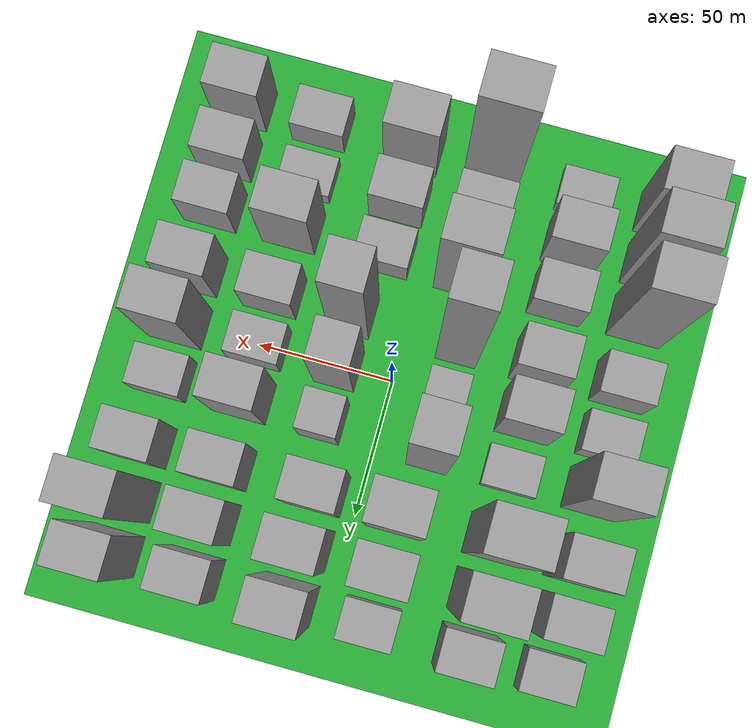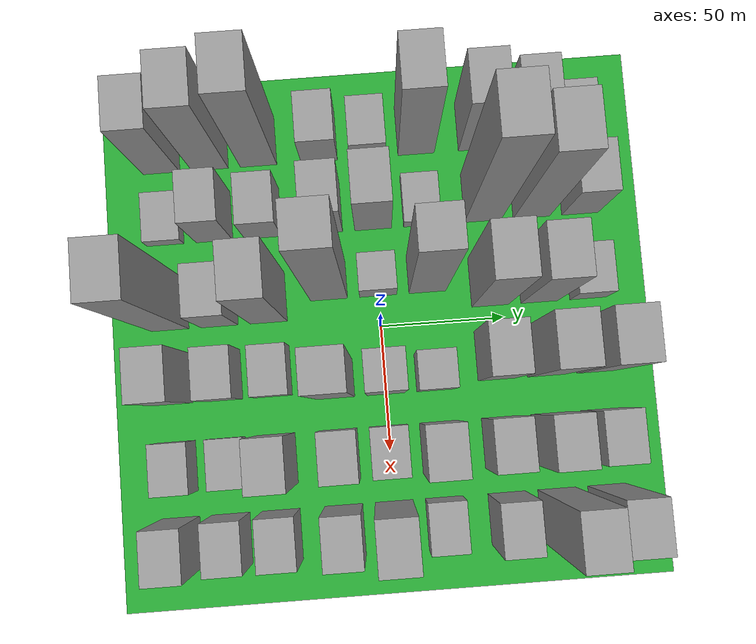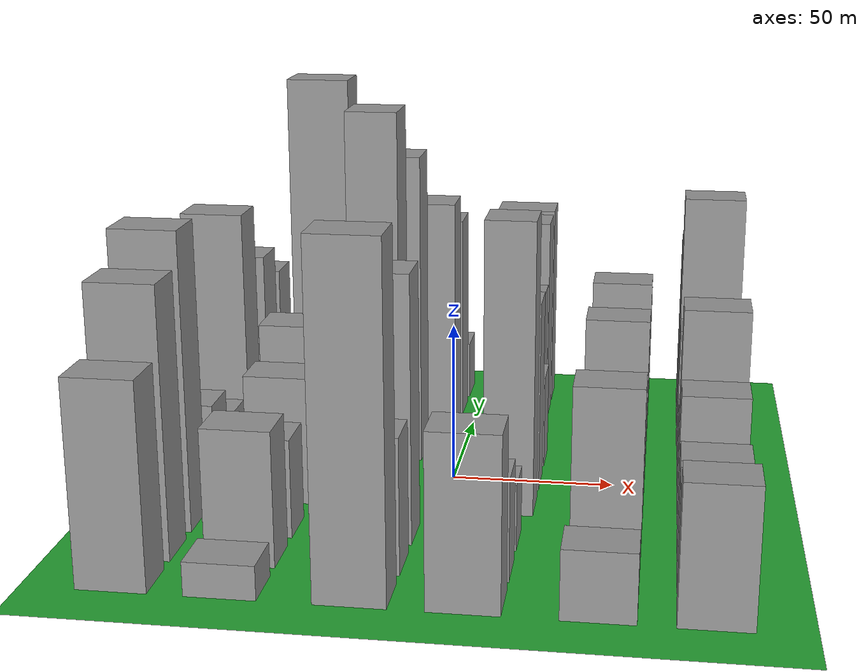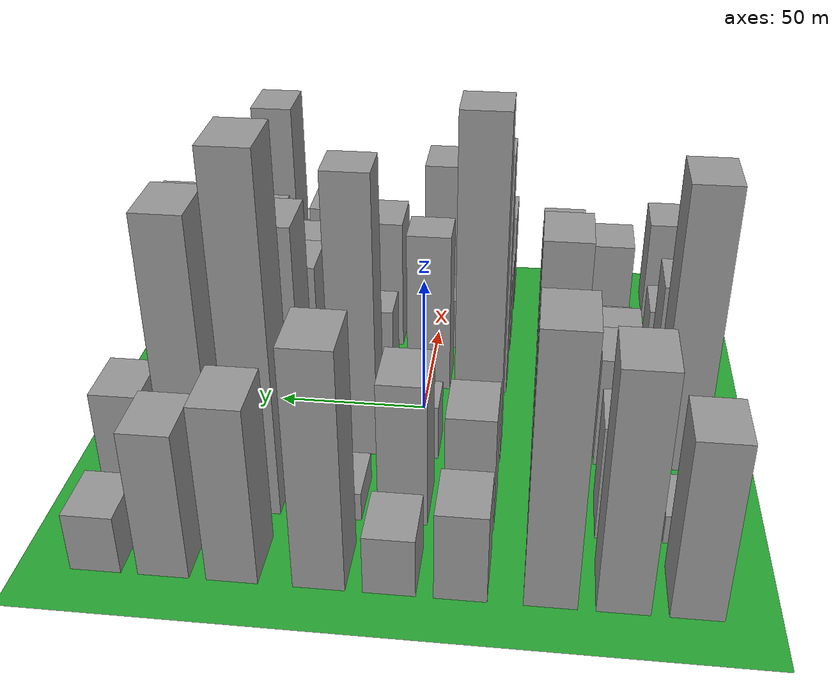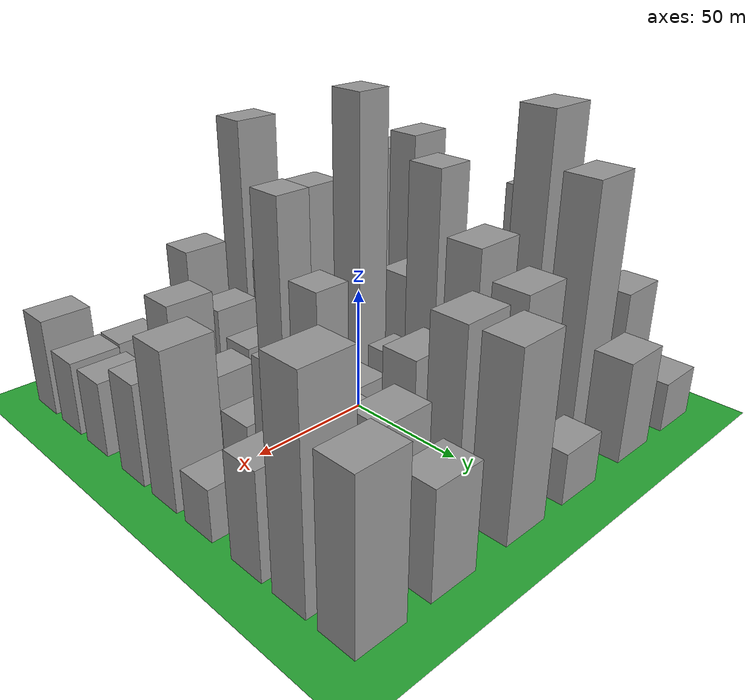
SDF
<sdf version="1.5">
 <world name="default">
  <light name="sun" type="directional">
   <pose>0 0 10 0 -0 0</pose>
   <diffuse>0.8 0.8 0.8 1</diffuse>
   <specular>0.1 0.1 0.1 1</specular>
   <attenuation>
    <range>1000</range>
    <constant>0.9</constant>
    <linear>0.01</linear>
    <quadratic>0.001</quadratic>
   </attenuation>
   <direction>-0.5 0.5 -1</direction>
  </light>
  <model name="ground_plane">
   <static>1</static>
   <link name="link">
    <collision name="collision">
     <geometry><plane><normal>0 0 1</normal><size>200 200</size></plane></geometry>
     <surface><friction><ode><mu>100</mu><mu2>50</mu2></ode></friction></surface>
    </collision>
    <visual name="visual">
     <cast_shadows>0</cast_shadows>
     <geometry><plane><normal>0 0 1</normal><size>200 200</size></plane></geometry>
     <material>
      <script><uri>file://media/materials/scripts/gazebo.material</uri><name>Gazebo/Green</name></script>
     </material>
    </visual>
   </link>
  </model>
  <gravity>0 0 -9.8</gravity>
  <magnetic_field>6e-06 2.3e-05 -4.2e-05</magnetic_field>
  <atmosphere type="adiabatic"/>
  <physics name="default_physics" default="0" type="ode">
   <max_step_size>0.001</max_step_size>
   <real_time_factor>1</real_time_factor>
   <real_time_update_rate>1000</real_time_update_rate>
  </physics>
  <scene><ambient>0.4 0.4 0.4 1</ambient><background>0.7 0.7 0.7 1</background><shadows>1</shadows></scene>
  <spherical_coordinates>
   <surface_model>EARTH_WGS84</surface_model>
   <latitude_deg>0</latitude_deg>
   <longitude_deg>0</longitude_deg>
   <elevation>0</elevation>
   <heading_deg>0</heading_deg>
  </spherical_coordinates>
  <model name="unit_box_0_0">
   <pose>-80 85 10 0 0 0</pose>
   <link name="link">
    <inertial>
     <mass>1</mass>
     <inertia>
      <ixx>0.166667</ixx>
      <ixy>0</ixy>
      <ixz>0</ixz>
      <iyy>0.166667</iyy>
      <iyz>0</iyz>
      <izz>0.166667</izz>
     </inertia>
    </inertial>
    <collision name="collision"><geometry><box><size>20 15 20</size></box></geometry></collision>
    <visual name="visual">
     <geometry><box><size>20 15 20</size></box></geometry>
     <material>
      <script><name>Gazebo/Grey</name><uri>file://media/materials/scripts/gazebo.material</uri></script>
     </material>
    </visual>
   </link>
   <static>true</static>
  </model>
  <model name="unit_box_0_1">
   <pose>-80 65 25 0 0 0</pose>
   <link name="link">
    <inertial>
     <mass>1</mass>
     <inertia>
      <ixx>0.166667</ixx>
      <ixy>0</ixy>
      <ixz>0</ixz>
      <iyy>0.166667</iyy>
      <iyz>0</iyz>
      <izz>0.166667</izz>
     </inertia>
    </inertial>
    <collision name="collision"><geometry><box><size>20 15 50</size></box></geometry></collision>
    <visual name="visual">
     <geometry><box><size>20 15 50</size></box></geometry>
     <material>
      <script><name>Gazebo/Grey</name><uri>file://media/materials/scripts/gazebo.material</uri></script>
     </material>
    </visual>
   </link>
   <static>true</static>
  </model>
  <model name="unit_box_0_2">
   <pose>-80 45 30 0 0 0</pose>
   <link name="link">
    <inertial>
     <mass>1</mass>
     <inertia>
      <ixx>0.166667</ixx>
      <ixy>0</ixy>
      <ixz>0</ixz>
      <iyy>0.166667</iyy>
      <iyz>0</iyz>
      <izz>0.166667</izz>
     </inertia>
    </inertial>
    <collision name="collision"><geometry><box><size>20 15 60</size></box></geometry></collision>
    <visual name="visual">
     <geometry><box><size>20 15 60</size></box></geometry>
     <material>
      <script><name>Gazebo/Grey</name><uri>file://media/materials/scripts/gazebo.material</uri></script>
     </material>
    </visual>
   </link>
   <static>true</static>
  </model>
  <model name="unit_box_0_3">
   <pose>-50 85 20 0 0 0</pose>
   <link name="link">
    <inertial>
     <mass>1</mass>
     <inertia>
      <ixx>0.166667</ixx>
      <ixy>0</ixy>
      <ixz>0</ixz>
      <iyy>0.166667</iyy>
      <iyz>0</iyz>
      <izz>0.166667</izz>
     </inertia>
    </inertial>
    <collision name="collision"><geometry><box><size>20 15 40</size></box></geometry></collision>
    <visual name="visual">
     <geometry><box><size>20 15 40</size></box></geometry>
     <material>
      <script><name>Gazebo/Grey</name><uri>file://media/materials/scripts/gazebo.material</uri></script>
     </material>
    </visual>
   </link>
   <static>true</static>
  </model>
  <model name="unit_box_0_4">
   <pose>-50 65 50 0 0 0</pose>
   <link name="link">
    <inertial>
     <mass>1</mass>
     <inertia>
      <ixx>0.166667</ixx>
      <ixy>0</ixy>
      <ixz>0</ixz>
      <iyy>0.166667</iyy>
      <iyz>0</iyz>
      <izz>0.166667</izz>
     </inertia>
    </inertial>
    <collision name="collision"><geometry><box><size>20 15 100</size></box></geometry></collision>
    <visual name="visual">
     <geometry><box><size>20 15 100</size></box></geometry>
     <material>
      <script><name>Gazebo/Grey</name><uri>file://media/materials/scripts/gazebo.material</uri></script>
     </material>
    </visual>
   </link>
   <static>true</static>
  </model>
  <model name="unit_box_0_5">
   <pose>-50 45 60 0 0 0</pose>
   <link name="link">
    <inertial>
     <mass>1</mass>
     <inertia>
      <ixx>0.166667</ixx>
      <ixy>0</ixy>
      <ixz>0</ixz>
      <iyy>0.166667</iyy>
      <iyz>0</iyz>
      <izz>0.166667</izz>
     </inertia>
    </inertial>
    <collision name="collision"><geometry><box><size>20 15 120</size></box></geometry></collision>
    <visual name="visual">
     <geometry><box><size>20 15 120</size></box></geometry>
     <material>
      <script><name>Gazebo/Grey</name><uri>file://media/materials/scripts/gazebo.material</uri></script>
     </material>
    </visual>
   </link>
   <static>true</static>
  </model>
  <model name="unit_box_0_6">
   <pose>-80 20 40 0 0 0</pose>
   <link name="link">
    <inertial>
     <mass>1</mass>
     <inertia>
      <ixx>0.166667</ixx>
      <ixy>0</ixy>
      <ixz>0</ixz>
      <iyy>0.166667</iyy>
      <iyz>0</iyz>
      <izz>0.166667</izz>
     </inertia>
    </inertial>
    <collision name="collision"><geometry><box><size>20 15 80</size></box></geometry></collision>
    <visual name="visual">
     <geometry><box><size>20 15 80</size></box></geometry>
     <material>
      <script><name>Gazebo/Grey</name><uri>file://media/materials/scripts/gazebo.material</uri></script>
     </material>
    </visual>
   </link>
   <static>true</static>
  </model>
  <model name="unit_box_0_7">
   <pose>-80 0 10 0 0 0</pose>
   <link name="link">
    <inertial>
     <mass>1</mass>
     <inertia>
      <ixx>0.166667</ixx>
      <ixy>0</ixy>
      <ixz>0</ixz>
      <iyy>0.166667</iyy>
      <iyz>0</iyz>
      <izz>0.166667</izz>
     </inertia>
    </inertial>
    <collision name="collision"><geometry><box><size>20 15 20</size></box></geometry></collision>
    <visual name="visual">
     <geometry><box><size>20 15 20</size></box></geometry>
     <material>
      <script><name>Gazebo/Grey</name><uri>file://media/materials/scripts/gazebo.material</uri></script>
     </material>
    </visual>
   </link>
  </model>
  <model name="unit_box_0_8">
   <pose>-80 -20 15 0 0 0</pose>
   <link name="link">
    <inertial>
     <mass>1</mass>
     <inertia>
      <ixx>0.166667</ixx>
      <ixy>0</ixy>
      <ixz>0</ixz>
      <iyy>0.166667</iyy>
      <iyz>0</iyz>
      <izz>0.166667</izz>
     </inertia>
    </inertial>
    <collision name="collision"><geometry><box><size>20 15 30</size></box></geometry></collision>
    <visual name="visual">
     <geometry><box><size>20 15 30</size></box></geometry>
     <material>
      <script><name>Gazebo/Grey</name><uri>file://media/materials/scripts/gazebo.material</uri></script>
     </material>
    </visual>
   </link>
   <static>true</static>
  </model>
  <model name="unit_box_0_9">
   <pose>-50 20 5 0 0 0</pose>
   <link name="link">
    <inertial>
     <mass>1</mass>
     <inertia>
      <ixx>0.166667</ixx>
      <ixy>0</ixy>
      <ixz>0</ixz>
      <iyy>0.166667</iyy>
      <iyz>0</iyz>
      <izz>0.166667</izz>
     </inertia>
    </inertial>
    <collision name="collision"><geometry><box><size>20 15 10</size></box></geometry></collision>
    <visual name="visual">
     <geometry><box><size>20 15 10</size></box></geometry>
     <material>
      <script><name>Gazebo/Grey</name><uri>file://media/materials/scripts/gazebo.material</uri></script>
     </material>
    </visual>
   </link>
   <static>true</static>
  </model>
  <model name="unit_box_0_10">
   <pose>-50 0 25 0 0 0</pose>
   <link name="link">
    <inertial>
     <mass>1</mass>
     <inertia>
      <ixx>0.166667</ixx>
      <ixy>0</ixy>
      <ixz>0</ixz>
      <iyy>0.166667</iyy>
      <iyz>0</iyz>
      <izz>0.166667</izz>
     </inertia>
    </inertial>
    <collision name="collision"><geometry><box><size>20 15 50</size></box></geometry></collision>
    <visual name="visual">
     <geometry><box><size>20 15 50</size></box></geometry>
     <material>
      <script><name>Gazebo/Grey</name><uri>file://media/materials/scripts/gazebo.material</uri></script>
     </material>
    </visual>
   </link>
   <static>true</static>
  </model>
  <model name="unit_box_0_11">
   <pose>-50 -20 20 0 0 0</pose>
   <link name="link">
    <inertial>
     <mass>1</mass>
     <inertia>
      <ixx>0.166667</ixx>
      <ixy>0</ixy>
      <ixz>0</ixz>
      <iyy>0.166667</iyy>
      <iyz>0</iyz>
      <izz>0.166667</izz>
     </inertia>
    </inertial>
    <collision name="collision"><geometry><box><size>20 15 40</size></box></geometry></collision>
    <visual name="visual">
     <geometry><box><size>20 15 40</size></box></geometry>
     <material>
      <script><name>Gazebo/Grey</name><uri>file://media/materials/scripts/gazebo.material</uri></script>
     </material>
    </visual>
   </link>
   <static>true</static>
  </model>
  <model name="unit_box_0_12">
   <pose>-80 -45 45 0 0 0</pose>
   <link name="link">
    <inertial>
     <mass>1</mass>
     <inertia>
      <ixx>0.166667</ixx>
      <ixy>0</ixy>
      <ixz>0</ixz>
      <iyy>0.166667</iyy>
      <iyz>0</iyz>
      <izz>0.166667</izz>
     </inertia>
    </inertial>
    <collision name="collision"><geometry><box><size>20 15 90</size></box></geometry></collision>
    <visual name="visual">
     <geometry><box><size>20 15 90</size></box></geometry>
     <material>
      <script><name>Gazebo/Grey</name><uri>file://media/materials/scripts/gazebo.material</uri></script>
     </material>
    </visual>
   </link>
   <static>true</static>
  </model>
  <model name="unit_box_0_13">
   <pose>-80 -65 40 0 0 0</pose>
   <link name="link">
    <inertial>
     <mass>1</mass>
     <inertia>
      <ixx>0.166667</ixx>
      <ixy>0</ixy>
      <ixz>0</ixz>
      <iyy>0.166667</iyy>
      <iyz>0</iyz>
      <izz>0.166667</izz>
     </inertia>
    </inertial>
    <collision name="collision"><geometry><box><size>20 15 80</size></box></geometry></collision>
    <visual name="visual">
     <geometry><box><size>20 15 80</size></box></geometry>
     <material>
      <script><name>Gazebo/Grey</name><uri>file://media/materials/scripts/gazebo.material</uri></script>
     </material>
    </visual>
   </link>
   <static>true</static>
  </model>
  <model name="unit_box_0_14">
   <pose>-80 -85 30 0 0 0</pose>
   <link name="link">
    <inertial>
     <mass>1</mass>
     <inertia>
      <ixx>0.166667</ixx>
      <ixy>0</ixy>
      <ixz>0</ixz>
      <iyy>0.166667</iyy>
      <iyz>0</iyz>
      <izz>0.166667</izz>
     </inertia>
    </inertial>
    <collision name="collision"><geometry><box><size>20 15 60</size></box></geometry></collision>
    <visual name="visual">
     <geometry><box><size>20 15 60</size></box></geometry>
     <material>
      <script><name>Gazebo/Grey</name><uri>file://media/materials/scripts/gazebo.material</uri></script>
     </material>
    </visual>
   </link>
   <static>true</static>
  </model>
  <model name="unit_box_0_15">
   <pose>-50 -45 15 0 0 0</pose>
   <link name="link">
    <inertial>
     <mass>1</mass>
     <inertia>
      <ixx>0.166667</ixx>
      <ixy>0</ixy>
      <ixz>0</ixz>
      <iyy>0.166667</iyy>
      <iyz>0</iyz>
      <izz>0.166667</izz>
     </inertia>
    </inertial>
    <collision name="collision"><geometry><box><size>20 15 30</size></box></geometry></collision>
    <visual name="visual">
     <geometry><box><size>20 15 30</size></box></geometry>
     <material>
      <script><name>Gazebo/Grey</name><uri>file://media/materials/scripts/gazebo.material</uri></script>
     </material>
    </visual>
   </link>
   <static>true</static>
  </model>
  <model name="unit_box_0_16">
   <pose>-50 -65 20 0 0 0</pose>
   <link name="link">
    <inertial>
     <mass>1</mass>
     <inertia>
      <ixx>0.166667</ixx>
      <ixy>0</ixy>
      <ixz>0</ixz>
      <iyy>0.166667</iyy>
      <iyz>0</iyz>
      <izz>0.166667</izz>
     </inertia>
    </inertial>
    <collision name="collision"><geometry><box><size>20 15 40</size></box></geometry></collision>
    <visual name="visual">
     <geometry><box><size>20 15 40</size></box></geometry>
     <material>
      <script><name>Gazebo/Grey</name><uri>file://media/materials/scripts/gazebo.material</uri></script>
     </material>
    </visual>
   </link>
   <static>true</static>
  </model>
  <model name="unit_box_0_17">
   <pose>-50 -85 5 0 0 0</pose>
   <link name="link">
    <inertial>
     <mass>1</mass>
     <inertia>
      <ixx>0.166667</ixx>
      <ixy>0</ixy>
      <ixz>0</ixz>
      <iyy>0.166667</iyy>
      <iyz>0</iyz>
      <izz>0.166667</izz>
     </inertia>
    </inertial>
    <collision name="collision"><geometry><box><size>20 15 10</size></box></geometry></collision>
    <visual name="visual">
     <geometry><box><size>20 15 10</size></box></geometry>
     <material>
      <script><name>Gazebo/Grey</name><uri>file://media/materials/scripts/gazebo.material</uri></script>
     </material>
    </visual>
   </link>
   <static>true</static>
  </model>
  <model name="unit_box_0_18">
   <pose>-15 85 10 0 0 0</pose>
   <link name="link">
    <inertial>
     <mass>1</mass>
     <inertia>
      <ixx>0.166667</ixx>
      <ixy>0</ixy>
      <ixz>0</ixz>
      <iyy>0.166667</iyy>
      <iyz>0</iyz>
      <izz>0.166667</izz>
     </inertia>
    </inertial>
    <collision name="collision"><geometry><box><size>20 15 20</size></box></geometry></collision>
    <visual name="visual">
     <geometry><box><size>20 15 20</size></box></geometry>
     <material>
      <script><name>Gazebo/Grey</name><uri>file://media/materials/scripts/gazebo.material</uri></script>
     </material>
    </visual>
   </link>
   <static>true</static>
  </model>
  <model name="unit_box_0_19">
   <pose>-15 65 35 0 0 0</pose>
   <link name="link">
    <inertial>
     <mass>1</mass>
     <inertia>
      <ixx>0.166667</ixx>
      <ixy>0</ixy>
      <ixz>0</ixz>
      <iyy>0.166667</iyy>
      <iyz>0</iyz>
      <izz>0.166667</izz>
     </inertia>
    </inertial>
    <collision name="collision"><geometry><box><size>20 15 70</size></box></geometry></collision>
    <visual name="visual">
     <geometry><box><size>20 15 70</size></box></geometry>
     <material>
      <script><name>Gazebo/Grey</name><uri>file://media/materials/scripts/gazebo.material</uri></script>
     </material>
    </visual>
   </link>
   <static>true</static>
  </model>
  <model name="unit_box_0_20">
   <pose>-15 45 40 0 0 0</pose>
   <link name="link">
    <inertial>
     <mass>1</mass>
     <inertia>
      <ixx>0.166667</ixx>
      <ixy>0</ixy>
      <ixz>0</ixz>
      <iyy>0.166667</iyy>
      <iyz>0</iyz>
      <izz>0.166667</izz>
     </inertia>
    </inertial>
    <collision name="collision"><geometry><box><size>20 15 80</size></box></geometry></collision>
    <visual name="visual">
     <geometry><box><size>20 15 80</size></box></geometry>
     <material>
      <script><name>Gazebo/Grey</name><uri>file://media/materials/scripts/gazebo.material</uri></script>
     </material>
    </visual>
   </link>
   <static>true</static>
  </model>
  <model name="unit_box_0_21">
   <pose>15 85 35 0 0 0</pose>
   <link name="link">
    <inertial>
     <mass>1</mass>
     <inertia>
      <ixx>0.166667</ixx>
      <ixy>0</ixy>
      <ixz>0</ixz>
      <iyy>0.166667</iyy>
      <iyz>0</iyz>
      <izz>0.166667</izz>
     </inertia>
    </inertial>
    <collision name="collision"><geometry><box><size>20 15 70</size></box></geometry></collision>
    <visual name="visual">
     <geometry><box><size>20 15 70</size></box></geometry>
     <material>
      <script><name>Gazebo/Grey</name><uri>file://media/materials/scripts/gazebo.material</uri></script>
     </material>
    </visual>
   </link>
   <static>true</static>
  </model>
  <model name="unit_box_0_22">
   <pose>15 65 35 0 0 0</pose>
   <link name="link">
    <inertial>
     <mass>1</mass>
     <inertia>
      <ixx>0.166667</ixx>
      <ixy>0</ixy>
      <ixz>0</ixz>
      <iyy>0.166667</iyy>
      <iyz>0</iyz>
      <izz>0.166667</izz>
     </inertia>
    </inertial>
    <collision name="collision"><geometry><box><size>20 15 70</size></box></geometry></collision>
    <visual name="visual">
     <geometry><box><size>20 15 70</size></box></geometry>
     <material>
      <script><name>Gazebo/Grey</name><uri>file://media/materials/scripts/gazebo.material</uri></script>
     </material>
    </visual>
   </link>
   <static>true</static>
  </model>
  <model name="unit_box_0_23">
   <pose>15 45 25 0 0 0</pose>
   <link name="link">
    <inertial>
     <mass>1</mass>
     <inertia>
      <ixx>0.166667</ixx>
      <ixy>0</ixy>
      <ixz>0</ixz>
      <iyy>0.166667</iyy>
      <iyz>0</iyz>
      <izz>0.166667</izz>
     </inertia>
    </inertial>
    <collision name="collision"><geometry><box><size>20 15 50</size></box></geometry></collision>
    <visual name="visual">
     <geometry><box><size>20 15 50</size></box></geometry>
     <material>
      <script><name>Gazebo/Grey</name><uri>file://media/materials/scripts/gazebo.material</uri></script>
     </material>
    </visual>
   </link>
   <static>true</static>
  </model>
  <model name="unit_box_0_24">
   <pose>-20 20 50 0 0 0</pose>
   <link name="link">
    <inertial>
     <mass>1</mass>
     <inertia>
      <ixx>0.166667</ixx>
      <ixy>0</ixy>
      <ixz>0</ixz>
      <iyy>0.166667</iyy>
      <iyz>0</iyz>
      <izz>0.166667</izz>
     </inertia>
    </inertial>
    <collision name="collision"><geometry><box><size>15 15 100</size></box></geometry></collision>
    <visual name="visual">
     <geometry><box><size>15 15 100</size></box></geometry>
     <material>
      <script><name>Gazebo/Grey</name><uri>file://media/materials/scripts/gazebo.material</uri></script>
     </material>
    </visual>
   </link>
   <static>true</static>
  </model>
  <model name="unit_box_0_25">
   <pose>-20 0 10 0 0 0</pose>
   <link name="link">
    <inertial>
     <mass>1</mass>
     <inertia>
      <ixx>0.166667</ixx>
      <ixy>0</ixy>
      <ixz>0</ixz>
      <iyy>0.166667</iyy>
      <iyz>0</iyz>
      <izz>0.166667</izz>
     </inertia>
    </inertial>
    <collision name="collision"><geometry><box><size>15 15 20</size></box></geometry></collision>
    <visual name="visual">
     <geometry><box><size>15 15 20</size></box></geometry>
     <material>
      <script><name>Gazebo/Grey</name><uri>file://media/materials/scripts/gazebo.material</uri></script>
     </material>
    </visual>
   </link>
   <static>true</static>
  </model>
  <model name="unit_box_0_26">
   <pose>-20 -20 60 0 0 0</pose>
   <link name="link">
    <inertial>
     <mass>1</mass>
     <inertia>
      <ixx>0.166667</ixx>
      <ixy>0</ixy>
      <ixz>0</ixz>
      <iyy>0.166667</iyy>
      <iyz>0</iyz>
      <izz>0.166667</izz>
     </inertia>
    </inertial>
    <collision name="collision"><geometry><box><size>15 15 120</size></box></geometry></collision>
    <visual name="visual">
     <geometry><box><size>15 15 120</size></box></geometry>
     <material>
      <script><name>Gazebo/Grey</name><uri>file://media/materials/scripts/gazebo.material</uri></script>
     </material>
    </visual>
   </link>
   <static>true</static>
  </model>
  <model name="unit_box_0_27">
   <pose>20 20 15 0 0 0</pose>
   <link name="link">
    <inertial>
     <mass>1</mass>
     <inertia>
      <ixx>0.166667</ixx>
      <ixy>0</ixy>
      <ixz>0</ixz>
      <iyy>0.166667</iyy>
      <iyz>0</iyz>
      <izz>0.166667</izz>
     </inertia>
    </inertial>
    <collision name="collision"><geometry><box><size>15 15 30</size></box></geometry></collision>
    <visual name="visual">
     <geometry><box><size>15 15 30</size></box></geometry>
     <material>
      <script><name>Gazebo/Grey</name><uri>file://media/materials/scripts/gazebo.material</uri></script>
     </material>
    </visual>
   </link>
   <static>true</static>
  </model>
  <model name="unit_box_0_28">
   <pose>20 0 30 0 0 0</pose>
   <link name="link">
    <inertial>
     <mass>1</mass>
     <inertia>
      <ixx>0.166667</ixx>
      <ixy>0</ixy>
      <ixz>0</ixz>
      <iyy>0.166667</iyy>
      <iyz>0</iyz>
      <izz>0.166667</izz>
     </inertia>
    </inertial>
    <collision name="collision"><geometry><box><size>15 15 60</size></box></geometry></collision>
    <visual name="visual">
     <geometry><box><size>15 15 60</size></box></geometry>
     <material>
      <script><name>Gazebo/Grey</name><uri>file://media/materials/scripts/gazebo.material</uri></script>
     </material>
    </visual>
   </link>
   <static>true</static>
  </model>
  <model name="unit_box_0_29">
   <pose>20 -20 45 0 0 0</pose>
   <link name="link">
    <inertial>
     <mass>1</mass>
     <inertia>
      <ixx>0.166667</ixx>
      <ixy>0</ixy>
      <ixz>0</ixz>
      <iyy>0.166667</iyy>
      <iyz>0</iyz>
      <izz>0.166667</izz>
     </inertia>
    </inertial>
    <collision name="collision"><geometry><box><size>15 15 90</size></box></geometry></collision>
    <visual name="visual">
     <geometry><box><size>15 15 90</size></box></geometry>
     <material>
      <script><name>Gazebo/Grey</name><uri>file://media/materials/scripts/gazebo.material</uri></script>
     </material>
    </visual>
   </link>
   <static>true</static>
  </model>
  <model name="unit_box_0_30">
   <pose>-15 -45 40 0 0 0</pose>
   <link name="link">
    <inertial>
     <mass>1</mass>
     <inertia>
      <ixx>0.166667</ixx>
      <ixy>0</ixy>
      <ixz>0</ixz>
      <iyy>0.166667</iyy>
      <iyz>0</iyz>
      <izz>0.166667</izz>
     </inertia>
    </inertial>
    <collision name="collision"><geometry><box><size>20 15 80</size></box></geometry></collision>
    <visual name="visual">
     <geometry><box><size>20 15 80</size></box></geometry>
     <material>
      <script><name>Gazebo/Grey</name><uri>file://media/materials/scripts/gazebo.material</uri></script>
     </material>
    </visual>
   </link>
   <static>true</static>
  </model>
  <model name="unit_box_0_31">
   <pose>-15 -65 20 0 0 0</pose>
   <link name="link">
    <inertial>
     <mass>1</mass>
     <inertia>
      <ixx>0.166667</ixx>
      <ixy>0</ixy>
      <ixz>0</ixz>
      <iyy>0.166667</iyy>
      <iyz>0</iyz>
      <izz>0.166667</izz>
     </inertia>
    </inertial>
    <collision name="collision"><geometry><box><size>20 15 40</size></box></geometry></collision>
    <visual name="visual">
     <geometry><box><size>20 15 40</size></box></geometry>
     <material>
      <script><name>Gazebo/Grey</name><uri>file://media/materials/scripts/gazebo.material</uri></script>
     </material>
    </visual>
   </link>
   <static>true</static>
  </model>
  <model name="unit_box_0_32">
   <pose>-15 -85 50 0 0 0</pose>
   <link name="link">
    <inertial>
     <mass>1</mass>
     <inertia>
      <ixx>0.166667</ixx>
      <ixy>0</ixy>
      <ixz>0</ixz>
      <iyy>0.166667</iyy>
      <iyz>0</iyz>
      <izz>0.166667</izz>
     </inertia>
    </inertial>
    <collision name="collision"><geometry><box><size>20 15 100</size></box></geometry></collision>
    <visual name="visual">
     <geometry><box><size>20 15 100</size></box></geometry>
     <material>
      <script><name>Gazebo/Grey</name><uri>file://media/materials/scripts/gazebo.material</uri></script>
     </material>
    </visual>
   </link>
   <static>true</static>
  </model>
  <model name="unit_box_0_33">
   <pose>15 -45 10 0 0 0</pose>
   <link name="link">
    <inertial>
     <mass>1</mass>
     <inertia>
      <ixx>0.166667</ixx>
      <ixy>0</ixy>
      <ixz>0</ixz>
      <iyy>0.166667</iyy>
      <iyz>0</iyz>
      <izz>0.166667</izz>
     </inertia>
    </inertial>
    <collision name="collision"><geometry><box><size>20 15 20</size></box></geometry></collision>
    <visual name="visual">
     <geometry><box><size>20 15 20</size></box></geometry>
     <material>
      <script><name>Gazebo/Grey</name><uri>file://media/materials/scripts/gazebo.material</uri></script>
     </material>
    </visual>
   </link>
   <static>true</static>
  </model>
  <model name="unit_box_0_34">
   <pose>15 -65 15 0 0 0</pose>
   <link name="link">
    <inertial>
     <mass>1</mass>
     <inertia>
      <ixx>0.166667</ixx>
      <ixy>0</ixy>
      <ixz>0</ixz>
      <iyy>0.166667</iyy>
      <iyz>0</iyz>
      <izz>0.166667</izz>
     </inertia>
    </inertial>
    <collision name="collision"><geometry><box><size>20 15 30</size></box></geometry></collision>
    <visual name="visual">
     <geometry><box><size>20 15 30</size></box></geometry>
     <material>
      <script><name>Gazebo/Grey</name><uri>file://media/materials/scripts/gazebo.material</uri></script>
     </material>
    </visual>
   </link>
   <static>true</static>
  </model>
  <model name="unit_box_0_35">
   <pose>15 -85 25 0 0 0</pose>
   <link name="link">
    <inertial>
     <mass>1</mass>
     <inertia>
      <ixx>0.166667</ixx>
      <ixy>0</ixy>
      <ixz>0</ixz>
      <iyy>0.166667</iyy>
      <iyz>0</iyz>
      <izz>0.166667</izz>
     </inertia>
    </inertial>
    <collision name="collision"><geometry><box><size>20 15 50</size></box></geometry></collision>
    <visual name="visual">
     <geometry><box><size>20 15 50</size></box></geometry>
     <material>
      <script><name>Gazebo/Grey</name><uri>file://media/materials/scripts/gazebo.material</uri></script>
     </material>
    </visual>
   </link>
   <static>true</static>
  </model>
  <model name="unit_box_0_36">
   <pose>50 85 20 0 0 0</pose>
   <link name="link">
    <inertial>
     <mass>1</mass>
     <inertia>
      <ixx>0.166667</ixx>
      <ixy>0</ixy>
      <ixz>0</ixz>
      <iyy>0.166667</iyy>
      <iyz>0</iyz>
      <izz>0.166667</izz>
     </inertia>
    </inertial>
    <collision name="collision"><geometry><box><size>20 15 40</size></box></geometry></collision>
    <visual name="visual">
     <geometry><box><size>20 15 40</size></box></geometry>
     <material>
      <script><name>Gazebo/Grey</name><uri>file://media/materials/scripts/gazebo.material</uri></script>
     </material>
    </visual>
   </link>
   <static>true</static>
  </model>
  <model name="unit_box_0_37">
   <pose>50 65 25 0 0 0</pose>
   <link name="link">
    <inertial>
     <mass>1</mass>
     <inertia>
      <ixx>0.166667</ixx>
      <ixy>0</ixy>
      <ixz>0</ixz>
      <iyy>0.166667</iyy>
      <iyz>0</iyz>
      <izz>0.166667</izz>
     </inertia>
    </inertial>
    <collision name="collision"><geometry><box><size>20 15 50</size></box></geometry></collision>
    <visual name="visual">
     <geometry><box><size>20 15 50</size></box></geometry>
     <material>
      <script><name>Gazebo/Grey</name><uri>file://media/materials/scripts/gazebo.material</uri></script>
     </material>
    </visual>
   </link>
   <static>true</static>
  </model>
  <model name="unit_box_0_38">
   <pose>50 45 20 0 0 0</pose>
   <link name="link">
    <inertial>
     <mass>1</mass>
     <inertia>
      <ixx>0.166667</ixx>
      <ixy>0</ixy>
      <ixz>0</ixz>
      <iyy>0.166667</iyy>
      <iyz>0</iyz>
      <izz>0.166667</izz>
     </inertia>
    </inertial>
    <collision name="collision"><geometry><box><size>20 15 40</size></box></geometry></collision>
    <visual name="visual">
     <geometry><box><size>20 15 40</size></box></geometry>
     <material>
      <script><name>Gazebo/Grey</name><uri>file://media/materials/scripts/gazebo.material</uri></script>
     </material>
    </visual>
   </link>
   <static>true</static>
  </model>
  <model name="unit_box_0_39">
   <pose>80 85 30 0 0 0</pose>
   <link name="link">
    <inertial>
     <mass>1</mass>
     <inertia>
      <ixx>0.166667</ixx>
      <ixy>0</ixy>
      <ixz>0</ixz>
      <iyy>0.166667</iyy>
      <iyz>0</iyz>
      <izz>0.166667</izz>
     </inertia>
    </inertial>
    <collision name="collision"><geometry><box><size>20 15 60</size></box></geometry></collision>
    <visual name="visual">
     <geometry><box><size>20 15 60</size></box></geometry>
     <material>
      <script><name>Gazebo/Grey</name><uri>file://media/materials/scripts/gazebo.material</uri></script>
     </material>
    </visual>
   </link>
   <static>true</static>
  </model>
  <model name="unit_box_0_40">
   <pose>80 65 40 0 0 0</pose>
   <link name="link">
    <inertial>
     <mass>1</mass>
     <inertia>
      <ixx>0.166667</ixx>
      <ixy>0</ixy>
      <ixz>0</ixz>
      <iyy>0.166667</iyy>
      <iyz>0</iyz>
      <izz>0.166667</izz>
     </inertia>
    </inertial>
    <collision name="collision"><geometry><box><size>20 15 80</size></box></geometry></collision>
    <visual name="visual">
     <geometry><box><size>20 15 80</size></box></geometry>
     <material>
      <script><name>Gazebo/Grey</name><uri>file://media/materials/scripts/gazebo.material</uri></script>
     </material>
    </visual>
   </link>
   <static>true</static>
  </model>
  <model name="unit_box_0_41">
   <pose>80 45 20 0 0 0</pose>
   <link name="link">
    <inertial>
     <mass>1</mass>
     <inertia>
      <ixx>0.166667</ixx>
      <ixy>0</ixy>
      <ixz>0</ixz>
      <iyy>0.166667</iyy>
      <iyz>0</iyz>
      <izz>0.166667</izz>
     </inertia>
    </inertial>
    <collision name="collision"><geometry><box><size>20 15 40</size></box></geometry></collision>
    <visual name="visual">
     <geometry><box><size>20 15 40</size></box></geometry>
     <material>
      <script><name>Gazebo/Grey</name><uri>file://media/materials/scripts/gazebo.material</uri></script>
     </material>
    </visual>
   </link>
   <static>true</static>
  </model>
  <model name="unit_box_0_42">
   <pose>50 20 25 0 0 0</pose>
   <link name="link">
    <inertial>
     <mass>1</mass>
     <inertia>
      <ixx>0.166667</ixx>
      <ixy>0</ixy>
      <ixz>0</ixz>
      <iyy>0.166667</iyy>
      <iyz>0</iyz>
      <izz>0.166667</izz>
     </inertia>
    </inertial>
    <collision name="collision"><geometry><box><size>20 15 50</size></box></geometry></collision>
    <visual name="visual">
     <geometry><box><size>20 15 50</size></box></geometry>
     <material>
      <script><name>Gazebo/Grey</name><uri>file://media/materials/scripts/gazebo.material</uri></script>
     </material>
    </visual>
   </link>
   <static>true</static>
  </model>
  <model name="unit_box_0_43">
   <pose>50 0 10 0 0 0</pose>
   <link name="link">
    <inertial>
     <mass>1</mass>
     <inertia>
      <ixx>0.166667</ixx>
      <ixy>0</ixy>
      <ixz>0</ixz>
      <iyy>0.166667</iyy>
      <iyz>0</iyz>
      <izz>0.166667</izz>
     </inertia>
    </inertial>
    <collision name="collision"><geometry><box><size>20 15 20</size></box></geometry></collision>
    <visual name="visual">
     <geometry><box><size>20 15 20</size></box></geometry>
     <material>
      <script><name>Gazebo/Grey</name><uri>file://media/materials/scripts/gazebo.material</uri></script>
     </material>
    </visual>
   </link>
   <static>true</static>
  </model>
  <model name="unit_box_0_44">
   <pose>50 -20 15 0 0 0</pose>
   <link name="link">
    <inertial>
     <mass>1</mass>
     <inertia>
      <ixx>0.166667</ixx>
      <ixy>0</ixy>
      <ixz>0</ixz>
      <iyy>0.166667</iyy>
      <iyz>0</iyz>
      <izz>0.166667</izz>
     </inertia>
    </inertial>
    <collision name="collision"><geometry><box><size>20 15 30</size></box></geometry></collision>
    <visual name="visual">
     <geometry><box><size>20 15 30</size></box></geometry>
     <material>
      <script><name>Gazebo/Grey</name><uri>file://media/materials/scripts/gazebo.material</uri></script>
     </material>
    </visual>
   </link>
   <static>true</static>
  </model>
  <model name="unit_box_0_45">
   <pose>80 20 10 0 0 0</pose>
   <link name="link">
    <inertial>
     <mass>1</mass>
     <inertia>
      <ixx>0.166667</ixx>
      <ixy>0</ixy>
      <ixz>0</ixz>
      <iyy>0.166667</iyy>
      <iyz>0</iyz>
      <izz>0.166667</izz>
     </inertia>
    </inertial>
    <collision name="collision"><geometry><box><size>20 15 20</size></box></geometry></collision>
    <visual name="visual">
     <geometry><box><size>20 15 20</size></box></geometry>
     <material>
      <script><name>Gazebo/Grey</name><uri>file://media/materials/scripts/gazebo.material</uri></script>
     </material>
    </visual>
   </link>
   <static>true</static>
  </model>
  <model name="unit_box_0_46">
   <pose>80 0 30 0 0 0</pose>
   <link name="link">
    <inertial>
     <mass>1</mass>
     <inertia>
      <ixx>0.166667</ixx>
      <ixy>0</ixy>
      <ixz>0</ixz>
      <iyy>0.166667</iyy>
      <iyz>0</iyz>
      <izz>0.166667</izz>
     </inertia>
    </inertial>
    <collision name="collision"><geometry><box><size>20 15 60</size></box></geometry></collision>
    <visual name="visual">
     <geometry><box><size>20 15 60</size></box></geometry>
     <material>
      <script><name>Gazebo/Grey</name><uri>file://media/materials/scripts/gazebo.material</uri></script>
     </material>
    </visual>
   </link>
   <static>true</static>
  </model>
  <model name="unit_box_0_47">
   <pose>80 -20 20 0 0 0</pose>
   <link name="link">
    <inertial>
     <mass>1</mass>
     <inertia>
      <ixx>0.166667</ixx>
      <ixy>0</ixy>
      <ixz>0</ixz>
      <iyy>0.166667</iyy>
      <iyz>0</iyz>
      <izz>0.166667</izz>
     </inertia>
    </inertial>
    <collision name="collision"><geometry><box><size>20 15 40</size></box></geometry></collision>
    <visual name="visual">
     <geometry><box><size>20 15 40</size></box></geometry>
     <material>
      <script><name>Gazebo/Grey</name><uri>file://media/materials/scripts/gazebo.material</uri></script>
     </material>
    </visual>
   </link>
   <static>true</static>
  </model>
  <model name="unit_box_0_48">
   <pose>50 -45 25 0 0 0</pose>
   <link name="link">
    <inertial>
     <mass>1</mass>
     <inertia>
      <ixx>0.166667</ixx>
      <ixy>0</ixy>
      <ixz>0</ixz>
      <iyy>0.166667</iyy>
      <iyz>0</iyz>
      <izz>0.166667</izz>
     </inertia>
    </inertial>
    <collision name="collision"><geometry><box><size>20 15 50</size></box></geometry></collision>
    <visual name="visual">
     <geometry><box><size>20 15 50</size></box></geometry>
     <material>
      <script><name>Gazebo/Grey</name><uri>file://media/materials/scripts/gazebo.material</uri></script>
     </material>
    </visual>
   </link>
   <static>true</static>
  </model>
  <model name="unit_box_0_49">
   <pose>50 -65 5 0 0 0</pose>
   <link name="link">
    <inertial>
     <mass>1</mass>
     <inertia>
      <ixx>0.166667</ixx>
      <ixy>0</ixy>
      <ixz>0</ixz>
      <iyy>0.166667</iyy>
      <iyz>0</iyz>
      <izz>0.166667</izz>
     </inertia>
    </inertial>
    <collision name="collision"><geometry><box><size>20 15 10</size></box></geometry></collision>
    <visual name="visual">
     <geometry><box><size>20 15 10</size></box></geometry>
     <material>
      <script><name>Gazebo/Grey</name><uri>file://media/materials/scripts/gazebo.material</uri></script>
     </material>
    </visual>
   </link>
   <static>true</static>
  </model>
  <model name="unit_box_0_50">
   <pose>50 -85 10 0 0 0</pose>
   <link name="link">
    <inertial>
     <mass>1</mass>
     <inertia>
      <ixx>0.166667</ixx>
      <ixy>0</ixy>
      <ixz>0</ixz>
      <iyy>0.166667</iyy>
      <iyz>0</iyz>
      <izz>0.166667</izz>
     </inertia>
    </inertial>
    <collision name="collision"><geometry><box><size>20 15 20</size></box></geometry></collision>
    <visual name="visual">
     <geometry><box><size>20 15 20</size></box></geometry>
     <material>
      <script><name>Gazebo/Grey</name><uri>file://media/materials/scripts/gazebo.material</uri></script>
     </material>
    </visual>
   </link>
   <static>true</static>
  </model>
  <model name="unit_box_0_51">
   <pose>80 -45 15 0 0 0</pose>
   <link name="link">
    <inertial>
     <mass>1</mass>
     <inertia>
      <ixx>0.166667</ixx>
      <ixy>0</ixy>
      <ixz>0</ixz>
      <iyy>0.166667</iyy>
      <iyz>0</iyz>
      <izz>0.166667</izz>
     </inertia>
    </inertial>
    <collision name="collision"><geometry><box><size>20 15 30</size></box></geometry></collision>
    <visual name="visual">
     <geometry><box><size>20 15 30</size></box></geometry>
     <material>
      <script><name>Gazebo/Grey</name><uri>file://media/materials/scripts/gazebo.material</uri></script>
     </material>
    </visual>
   </link>
   <static>true</static>
  </model>
  <model name="unit_box_0_52">
   <pose>80 -65 15 0 0 0</pose>
   <link name="link">
    <inertial>
     <mass>1</mass>
     <inertia>
      <ixx>0.166667</ixx>
      <ixy>0</ixy>
      <ixz>0</ixz>
      <iyy>0.166667</iyy>
      <iyz>0</iyz>
      <izz>0.166667</izz>
     </inertia>
    </inertial>
    <collision name="collision"><geometry><box><size>20 15 30</size></box></geometry></collision>
    <visual name="visual">
     <geometry><box><size>20 15 30</size></box></geometry>
     <material>
      <script><name>Gazebo/Grey</name><uri>file://media/materials/scripts/gazebo.material</uri></script>
     </material>
    </visual>
   </link>
   <static>true</static>
  </model>
  <model name="unit_box_0_53">
   <pose>80 -85 20 0 0 0</pose>
   <link name="link">
    <inertial>
     <mass>1</mass>
     <inertia>
      <ixx>0.166667</ixx>
      <ixy>0</ixy>
      <ixz>0</ixz>
      <iyy>0.166667</iyy>
      <iyz>0</iyz>
      <izz>0.166667</izz>
     </inertia>
    </inertial>
    <collision name="collision"><geometry><box><size>20 15 40</size></box></geometry></collision>
    <visual name="visual">
     <geometry><box><size>20 15 40</size></box></geometry>
     <material>
      <script><name>Gazebo/Grey</name><uri>file://media/materials/scripts/gazebo.material</uri></script>
     </material>
    </visual>
   </link>
   <static>true</static>
  </model>
  <plugin name="gazebo_occupancy_map" filename="libgazebo_2Dmap_plugin.so">
   <map_resolution>1</map_resolution>
   <map_z>115</map_z>
   <map_size_x>200</map_size_x>
   <map_size_y>200</map_size_y>
  </plugin>
 </world>
</sdf>
